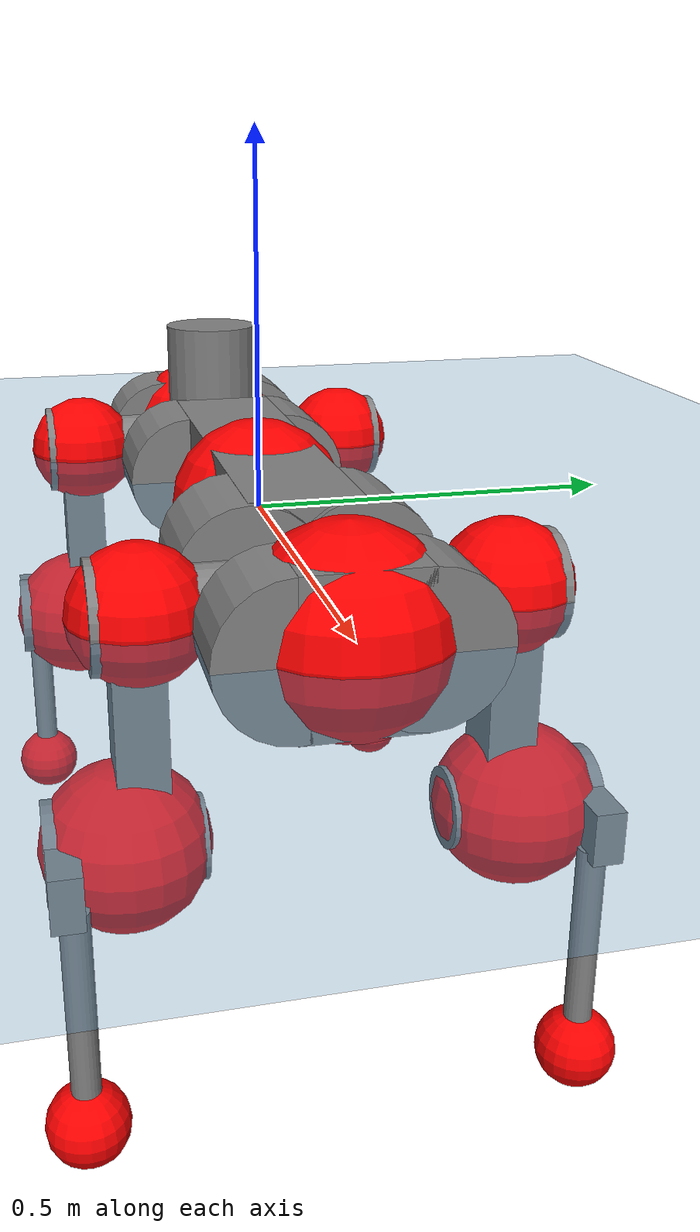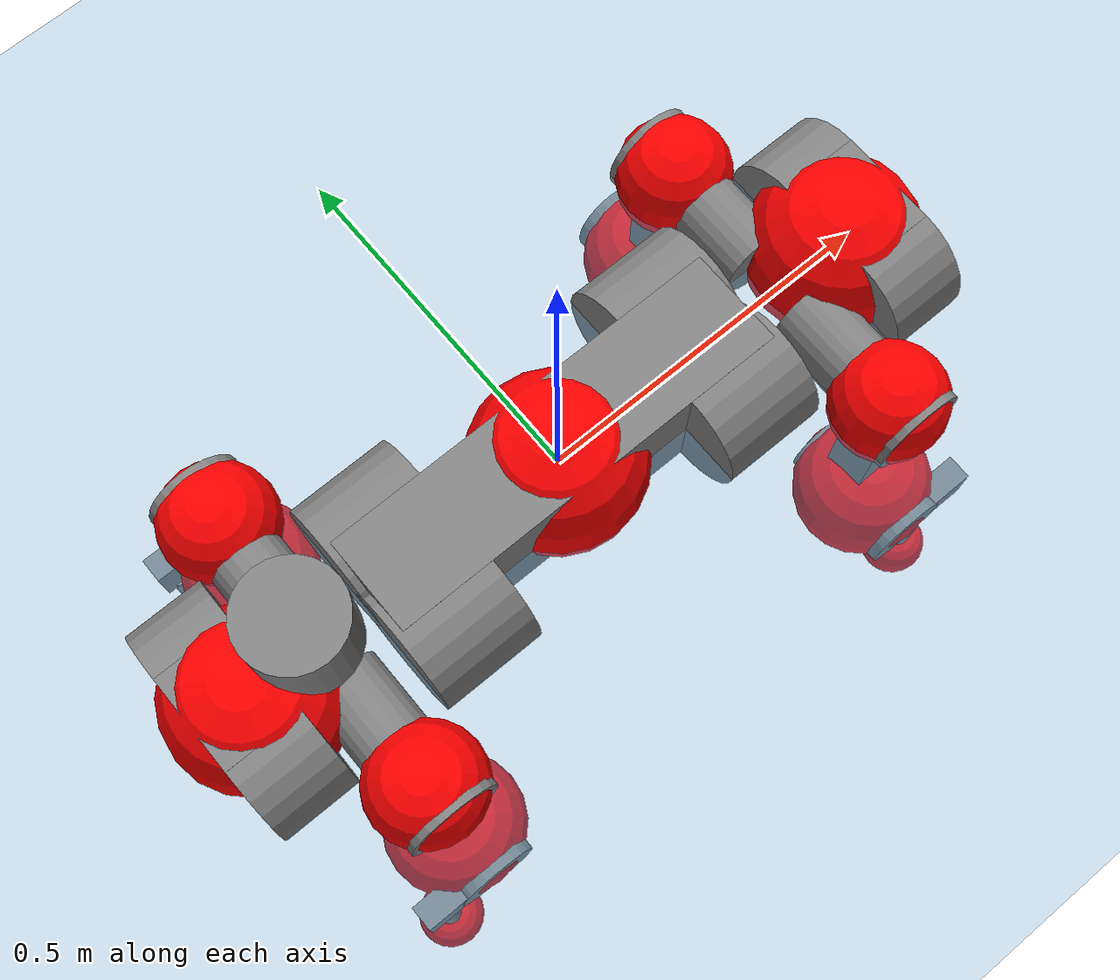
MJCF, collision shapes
<mujoco model="anymal_c">
  <compiler angle="radian" assetdir="assets" balanceinertia="true" inertiafromgeom="false"/>

  <option timestep="0.005" density="1.2" viscosity="2e-05"/>

  <size nkey="1"/>

  <visual>
    <quality shadowsize="8192"/>
    <map shadowclip="0.5"/>
  </visual>

  <default>
    <default class="/">
      <material specular="0" shininess="0.25"/>
      <geom contype="0" conaffinity="0" group="1" solref="-1000 -80"/>
      <site size="0.01 0.005 0.005" group="5"/>
      <general forcelimited="true" forcerange="-80 80" biastype="affine" gainprm="80" biasprm="0 -80 -2"/>
      <default class="anymal_c">
        <joint armature="0.01" damping="0.01" frictionloss="0.1"/>
        <default class="visual">
          <geom type="mesh" group="2"/>
          <default class="visual_zflip"/>
        </default>
        <default class="collision">
          <geom type="cylinder" group="3"/>
          <default class="foot">
            <geom size="0.03 0 0" type="sphere" condim="6" priority="1" friction="0.8 0.02 0.01" solimp="0.015 1 0.03"/>
          </default>
        </default>
      </default>
      <default class="reward_collision_sphere">
        <geom group="5" rgba="1 0 0 1"/>
      </default>
    </default>
  </default>

  <asset>
    <texture type="skybox" colorspace="auto" name="//unnamed_texture_0" builtin="gradient" rgb1="0.95 0.95 0.95" rgb2="0.95 0.95 0.95" width="100" height="600"/>
    <texture type="2d" colorspace="auto" name="texplane" builtin="checker" rgb1="0.345 0.575 0.748" rgb2="0.345 0.575 0.748" markrgb="1 1 1" width="512" height="512"/>
    <texture type="2d" colorspace="linear" name="base" file="base.png"/>
    <texture type="2d" colorspace="linear" name="top_shell" file="top_shell.png"/>
    <texture type="2d" colorspace="linear" name="bottom_shell" file="bottom_shell.png"/>
    <texture type="2d" colorspace="linear" name="remote" file="remote.png"/>
    <texture type="2d" colorspace="linear" name="hatch" file="hatch.png"/>
    <texture type="2d" colorspace="linear" name="handle" file="handle.png"/>
    <texture type="2d" colorspace="linear" name="face" file="face.png"/>
    <texture type="2d" colorspace="linear" name="battery" file="battery.png"/>
    <texture type="2d" colorspace="linear" name="lidar_cage" file="lidar_cage.png"/>
    <texture type="2d" colorspace="linear" name="depth_camera" file="depth_camera.png"/>
    <texture type="2d" colorspace="linear" name="wide_angle_camera" file="wide_angle_camera.png"/>
    <texture type="2d" colorspace="linear" name="lidar" file="lidar.png"/>
    <texture type="2d" colorspace="linear" name="drive" file="drive.png"/>
    <texture type="2d" colorspace="linear" name="hip_l" file="hip_l.png"/>
    <texture type="2d" colorspace="linear" name="shank_l" file="shank_l.png"/>
    <texture type="2d" colorspace="linear" name="foot" file="foot.png"/>
    <texture type="2d" colorspace="linear" name="thigh" file="thigh.png"/>
    <texture type="2d" colorspace="linear" name="shank_r" file="shank_r.png"/>
    <texture type="2d" colorspace="linear" name="hip_r" file="hip_r.png"/>
    <material name="MatPlane" class="/" texture="texplane" texuniform="true" texrepeat="2 2" specular="0.9" shininess="0.5"/>
    <material name="black_plastic" class="/" rgba="0.007 0.007 0.007 1"/>
    <material name="green" class="/" rgba="0.052 0.178 0.033 1"/>
    <material name="red" class="/" rgba="0.178 0.006 0.005 1"/>
    <material name="yellow" class="/" rgba="0.178 0.119 0.006 1"/>
    <material name="lwl" class="/" rgba="0.8 0.8 0.8 1"/>
    <material name="base" class="/" texture="base"/>
    <material name="top_shell" class="/" texture="top_shell"/>
    <material name="bottom_shell" class="/" texture="bottom_shell"/>
    <material name="hip_l" class="/" texture="hip_l"/>
    <material name="thigh" class="/" texture="thigh"/>
    <material name="shank_l" class="/" texture="shank_l"/>
    <material name="foot" class="/" texture="foot"/>
    <material name="hip_r" class="/" texture="hip_r"/>
    <material name="shank" class="/" texture="shank_r"/>
    <material name="hatch" class="/" texture="hatch"/>
    <material name="remote" class="/" texture="remote"/>
    <material name="handle" class="/" texture="handle"/>
    <material name="face" class="/" texture="face"/>
    <material name="depth_camera" class="/" texture="depth_camera"/>
    <material name="wide_angle_camera" class="/" texture="wide_angle_camera"/>
    <material name="battery" class="/" texture="battery"/>
    <material name="lidar_cage" class="/" texture="lidar_cage"/>
    <material name="lidar" class="/" texture="lidar"/>
    <material name="drive" class="/" texture="drive"/>
    <mesh name="base_0" class="/" file="base_0.obj"/>
    <mesh name="base_1" class="/" file="base_1.obj"/>
    <mesh name="base_2" class="/" file="base_2.obj"/>
    <mesh name="base_3" class="/" file="base_3.obj"/>
    <mesh name="base_4" class="/" file="base_4.obj"/>
    <mesh name="base_5" class="/" file="base_5.obj"/>
    <mesh name="top_shell" class="/" file="top_shell.obj"/>
    <mesh name="bottom_shell" class="/" file="bottom_shell.obj"/>
    <mesh name="remote" class="/" file="remote.obj"/>
    <mesh name="handle" class="/" file="handle.obj"/>
    <mesh name="face" class="/" file="face.obj"/>
    <mesh name="wide_angle_camera" class="/" file="wide_angle_camera.obj"/>
    <mesh name="depth_camera" class="/" file="depth_camera.obj"/>
    <mesh name="battery" class="/" file="battery.obj"/>
    <mesh name="lidar_cage" class="/" file="lidar_cage.obj"/>
    <mesh name="lidar" class="/" file="lidar.obj"/>
    <mesh name="drive" class="/" file="drive.obj"/>
    <mesh name="hip_l" class="/" file="hip_l.obj"/>
    <mesh name="thigh" class="/" file="thigh.obj"/>
    <mesh name="shank_l" class="/" file="shank_l.obj"/>
    <mesh name="foot" class="/" file="foot.obj"/>
    <mesh name="hip_r" class="/" file="hip_r.obj"/>
    <mesh name="hatch" class="/" file="hatch.obj"/>
    <mesh name="shank_r" class="/" file="shank_r.obj"/>
  </asset>

  <worldbody>
    <geom name="floor" class="/" size="100 100 0.125" type="plane" group="0" material="MatPlane"/>
    <light name="toplight_shadow" class="/" pos="0 0 5" dir="0.0990148 0.0990148 -0.990148" type="directional" ambient="0.04 0.04 0.04" diffuse="0.55 0.55 0.55" specular="0.12 0.12 0.12"/>
    <light name="toplight_fill" class="/" pos="0 0 5" dir="0.0990148 0.0990148 -0.990148" type="directional" castshadow="false" ambient="0.04 0.04 0.04" diffuse="0.3 0.3 0.3" specular="0.08 0.08 0.08"/>
    <body name="trunk" childclass="anymal_c" pos="-0.00203329 -0.000242768 0.00102365" quat="1 -9.79879e-05 -0.000438046 -0.000236932">
      <inertial pos="0.00020613 -0.000616524 0.0481669" quat="0.501302 0.495744 0.502003 0.500926" mass="19.503" diaginertia="0.848416 0.570576 0.209804"/>
      <joint name="//unnamed_joint_0" type="free" armature="0" damping="0" frictionloss="0"/>
      <geom name="//unnamed_geom_1" class="visual" material="green" mesh="base_0"/>
      <geom name="//unnamed_geom_2" class="visual" material="yellow" mesh="base_1"/>
      <geom name="//unnamed_geom_3" class="visual" material="red" mesh="base_2"/>
      <geom name="//unnamed_geom_4" class="visual" material="black_plastic" mesh="base_3"/>
      <geom name="//unnamed_geom_5" class="visual" material="lwl" mesh="base_4"/>
      <geom name="//unnamed_geom_6" class="visual" material="base" mesh="base_5"/>
      <geom name="trunk_1" class="collision" size="0.292651 0.0706399 0.0908227" type="box"/>
      <geom name="trunk_2" class="collision" size="0.0908227 0.0731627" pos="0.229775 0.0687002 0" quat="0.707107 0 0.707107 0"/>
      <geom name="trunk_3" class="collision" size="0.0908227 0.0731627" pos="-0.229775 0.0687002 0" quat="0.707107 0 0.707107 0"/>
      <geom name="trunk_4" class="collision" size="0.0908227 0.0731627" pos="0.229775 -0.0687002 0" quat="0.707107 0 0.707107 0"/>
      <geom name="trunk_5" class="collision" size="0.0908227 0.0731627" pos="-0.229775 -0.0687002 0" quat="0.707107 0 0.707107 0"/>
      <geom name="//unnamed_geom_12" class="visual" material="top_shell" mesh="top_shell"/>
      <geom name="//unnamed_geom_13" class="visual" material="bottom_shell" mesh="bottom_shell"/>
      <geom name="//unnamed_geom_14" class="visual" material="remote" mesh="remote"/>
      <geom name="//unnamed_geom_15" class="visual" material="handle" mesh="handle"/>
      <geom name="//unnamed_geom_16" class="visual" pos="0.437892 0 0" quat="1 0 0 0" material="face" mesh="face"/>
      <geom name="trunk_6" class="collision" size="0.0555027 0.0706399 0.0908227" pos="0.495996 0 0" type="box"/>
      <geom name="//unnamed_geom_18" class="collision" size="0.0908227 0.0555027" pos="0.495996 0.0687002 0" quat="0.707107 0 0.707107 0"/>
      <geom name="//unnamed_geom_19" class="collision" size="0.0908227 0.0555027" pos="0.495996 -0.0687002 0" quat="0.707107 0 0.707107 0"/>
      <geom name="//unnamed_geom_20" class="visual" pos="0.4877 0 -0.0283868" quat="0.965926 0 0.258819 0" material="depth_camera" mesh="depth_camera"/>
      <geom name="//unnamed_geom_21" class="visual" pos="0.541951 0 0.0148137" material="wide_angle_camera" mesh="wide_angle_camera"/>
      <geom name="//unnamed_geom_22" class="visual_zflip" pos="-0.437892 0 0" quat="0 0 0 1" material="face" mesh="face"/>
      <geom name="trunk_7" class="collision" size="0.0555027 0.0706399 0.0908227" pos="-0.495996 0 0" quat="0 0 0 1" type="box"/>
      <geom name="//unnamed_geom_24" class="collision" size="0.0908227 0.0555027" pos="-0.495996 -0.0687002 0" quat="0 -0.707107 0 0.707107"/>
      <geom name="//unnamed_geom_25" class="collision" size="0.0908227 0.0555027" pos="-0.495996 0.0687002 0" quat="0 -0.707107 0 0.707107"/>
      <geom name="//unnamed_geom_26" class="visual" pos="-0.4877 0 -0.0283868" quat="0 -0.258819 0 0.965926" material="depth_camera" mesh="depth_camera"/>
      <geom name="//unnamed_geom_27" class="visual_zflip" pos="-0.541951 0 0.0148137" quat="0 0 0 1" material="wide_angle_camera" mesh="wide_angle_camera"/>
      <geom name="//unnamed_geom_28" class="visual" material="battery" mesh="battery"/>
      <geom name="//unnamed_geom_29" class="visual" pos="0 0.0740532 0.0292549" quat="0.683013 -0.183013 0.183013 0.683013" material="depth_camera" mesh="depth_camera"/>
      <geom name="//unnamed_geom_30" class="visual" pos="0 -0.0740532 0.0292549" quat="0.683013 0.183013 0.183013 -0.683013" material="depth_camera" mesh="depth_camera"/>
      <geom name="//unnamed_geom_31" class="visual" pos="-0.384542 0 0.0727324" quat="1 0 0 0" material="lidar_cage" mesh="lidar_cage"/>
      <geom name="trunk_8" class="collision" size="0.0706399 0.0605484" pos="-0.384542 0 0.132106"/>
      <geom name="//unnamed_geom_33" class="visual" pos="-0.384542 -2.94668e-05 0.140715" quat="0.707107 0 0 -0.707107" material="lidar" mesh="lidar"/>
      <geom name="//unnamed_geom_34" class="visual" pos="0.316825 0.102072 -1.4017e-10" quat="0.258819 0.965926 0 0" material="drive" mesh="drive"/>
      <geom name="//unnamed_geom_35" class="visual" pos="0.316825 -0.102072 1.4017e-10" quat="0.258819 -0.965926 0 0" material="drive" mesh="drive"/>
      <geom name="//unnamed_geom_36" class="visual" pos="-0.316825 0.102072 1.4017e-10" quat="0 0 0.965926 -0.258819" material="drive" mesh="drive"/>
      <geom name="//unnamed_geom_37" class="visual" pos="-0.316825 -0.102072 -1.4017e-10" quat="0 0 -0.965926 -0.258819" material="drive" mesh="drive"/>
      <geom name="//unnamed_geom_38" class="visual" pos="0.122546 0 0.0722376" quat="1 0 0 0" material="hatch" mesh="hatch"/>
      <geom name="//unnamed_geom_39" class="reward_collision_sphere" size="0.121097"/>
      <geom name="//unnamed_geom_40" class="reward_collision_sphere" size="0.121097" pos="0.475396 0 0"/>
      <geom name="//unnamed_geom_41" class="reward_collision_sphere" size="0.121097" pos="-0.475396 0 0"/>
      <site name="imu" pos="0.261548 0.00323159 0.0488746" size="0.0100914"/>
      <camera name="track" pos="0 -1.96286 0" quat="0.707107 0.707107 0 0" mode="trackcom"/>
      <camera name="ego_camera" pos="0.475396 0 -0.0395823" quat="-0.5 -0.5 0.5 0.5"/>
      <body name="LF_HIP" pos="0.318057 0.102926 -0.00117864" quat="0.258912 0.9659 -0.000994227 7.0143e-05">
        <inertial pos="0.0576853 -0.0139378 -0.00738786" quat="-0.128151 0.709501 -0.134727 0.679731" mass="2.89149" diaginertia="0.00781529 0.00445477 0.00315292"/>
        <joint name="LF_HAA" pos="0 0 0" axis="1 0.000966202 -0.000116453" range="-0.724667 0.460814" armature="0.0104576" damping="0.010127" frictionloss="0.0957669"/>
        <geom name="//unnamed_geom_42" class="visual" pos="0 -8.24555e-06 1.35433e-06" quat="0.258819 -0.965926 0 0" material="hip_l" mesh="hip_l"/>
        <geom name="//unnamed_geom_43" class="visual" pos="0.0632804 -0.0756931 -0.0437615" quat="0.183013 -0.683013 0.683013 0.183013" material="drive" mesh="drive"/>
        <geom name="//unnamed_geom_44" class="collision" size="0.050457 0.0706399" pos="0.0632804 -0.0117377 -0.00683289" quat="-0.353553 -0.612372 0.612372 -0.353553"/>
        <body name="LF_THIGH" pos="0.0633647 -0.0719872 -0.0419538" quat="0.183072 -0.68294 0.683074 0.182997">
          <inertial pos="0.0348188 9.89353e-05 -0.241437" quat="0.993197 -0.0041008 -0.0814864 0.0830891" mass="3.17705" diaginertia="0.0395879 0.0270479 0.00402487"/>
          <joint name="LF_HFE" pos="0 0 0" axis="0.999996 0.00266836 0.000521226" stiffness="0.0126448" range="-3.16669 3.15082" armature="0.0103813" damping="0" frictionloss="0.0966761"/>
          <geom name="//unnamed_geom_45" class="visual" pos="0.00149227 2.35147e-06 0" quat="0.707107 0 0 -0.707107" material="thigh" mesh="thigh"/>
          <geom name="//unnamed_geom_46" class="collision" size="0.0655942 0.0403656" pos="0.0422574 0 0" quat="0.5 0.5 -0.5 -0.5"/>
          <geom name="//unnamed_geom_47" class="collision" size="0.0378428 0.0302742 0.142606" pos="0.031693 0 -0.139838" quat="0.707107 0 0 -0.707107" type="box"/>
          <geom name="//unnamed_geom_48" class="visual" pos="0.10596 0 -0.282024" quat="1 0 0 0" material="drive" mesh="drive"/>
          <geom name="//unnamed_geom_49" class="collision" size="0.050457 0.0706399" pos="0.03201 0 -0.282024" quat="0.707107 0 0.707107 0"/>
          <geom name="//unnamed_geom_50" class="reward_collision_sphere" size="0.0807313" pos="0.0264109 0 0"/>
          <body name="LF_SHANK" pos="0.106158 -0.000142129 -0.282783" quat="1 5.64209e-07 -2.83742e-05 0.000105473">
            <inertial pos="0.00535438 -0.0607935 -0.0804332" quat="0.993606 -0.109213 -0.00263744 -0.028508" mass="0.598881" diaginertia="0.0135067 0.00831703 0.0010608"/>
            <joint name="LF_KFE" pos="0 0 0" axis="0.999985 -0.00356279 0.00411504" range="-3.14961 3.11446" armature="0.010467" damping="0.00916494" frictionloss="0.098549"/>
            <geom name="//unnamed_geom_51" class="visual" pos="0.000486598 0.00259456 0" quat="0.707107 0 0 -0.707107" material="shank_l" mesh="shank_l"/>
            <geom name="LF_kfe_act" class="collision" size="0.0605484 0.0201828" pos="0.0211287 0 0" quat="0.5 0.5 -0.5 -0.5"/>
            <geom name="//unnamed_geom_53" class="collision" size="0.0580246 0.0340585 0.0191737" pos="0.0211287 -0.0564313 0" quat="0.5 0.5 -0.5 -0.5" type="box"/>
            <geom name="//unnamed_geom_54" class="visual" pos="0.0137864 -0.0854807 -0.334441" quat="0.382683 0 0 -0.92388" material="foot" mesh="foot"/>
            <geom name="LF_calf" class="collision" size="0.01766 0.142543" pos="0.0137865 -0.0863169 -0.16722" quat="0.707107 0 0 -0.707107"/>
            <geom name="LF_foot" class="foot" size="0.029602" pos="0.0137865 -0.0863169 -0.312175" quat="0.707107 0 0 -0.707107"/>
            <geom name="//unnamed_geom_57" class="reward_collision_sphere" size="0.100914" pos="-0.0528217 0 0"/>
            <geom name="//unnamed_geom_58" class="reward_collision_sphere" size="0.050457" pos="0.0137865 -0.0863169 -0.312175"/>
            <site name="LF_foot" class="foot" pos="0.0137865 -0.0863169 -0.312175" quat="0.707107 0 0 -0.707107" size="0.0100914"/>
          </body>
        </body>
      </body>
      <body name="RF_HIP" pos="0.317078 -0.101092 0.00118479" quat="0.258888 -0.965907 0.000507621 8.97279e-05">
        <inertial pos="0.0609413 0.0145276 -0.00839525" quat="0.135213 0.679039 0.127844 0.710126" mass="2.95165" diaginertia="0.00769292 0.00450046 0.00313736"/>
        <joint name="RF_HAA" pos="0 0 0" axis="0.999997 -0.00181223 0.00168464" range="-0.504291 0.714831" armature="0.00898632" damping="0.0095854" frictionloss="0.111448"/>
        <geom name="//unnamed_geom_59" class="visual" pos="0 8.24549e-06 1.35432e-06" quat="0.258819 0.965926 0 0" material="hip_r" mesh="hip_r"/>
        <geom name="//unnamed_geom_60" class="visual" pos="0.0632804 0.0756931 -0.0437615" quat="0.183013 0.683013 0.683013 -0.183013" material="drive" mesh="drive"/>
        <geom name="//unnamed_geom_61" class="collision" size="0.050457 0.0706399" pos="0.0632804 0.0117377 -0.00683289" quat="-0.353553 0.612372 0.612372 0.353553"/>
        <body name="RF_THIGH" pos="0.0639897 0.0710059 -0.0406962" quat="0.182609 0.683246 0.68272 -0.183633">
          <inertial pos="0.0322884 -0.00230345 -0.242143" quat="0.992764 -0.00696149 -0.0796061 0.0896335" mass="3.10344" diaginertia="0.0402612 0.0278988 0.00397109"/>
          <joint name="RF_HFE" pos="0 0 0" axis="0.999986 -0.00494542 0.00175554" stiffness="0.00323888" range="-3.1255 3.15788" armature="0.0101911" damping="0.010666" frictionloss="0.0958194"/>
          <geom name="//unnamed_geom_62" class="visual" pos="0.00149227 2.35147e-06 0" quat="0.707107 0 0 -0.707107" material="thigh" mesh="thigh"/>
          <geom name="//unnamed_geom_63" class="collision" size="0.0655942 0.0403656" pos="0.0422574 0 0" quat="0.5 0.5 0.5 0.5"/>
          <geom name="//unnamed_geom_64" class="collision" size="0.0378428 0.0302742 0.142606" pos="0.031693 0 -0.139838" quat="0.707107 0 0 0.707107" type="box"/>
          <geom name="//unnamed_geom_65" class="visual" pos="0.10596 0 -0.282024" quat="1 0 0 0" material="drive" mesh="drive"/>
          <geom name="//unnamed_geom_66" class="collision" size="0.050457 0.0706399" pos="0.03201 0 -0.282024" quat="0.707107 0 0.707107 0"/>
          <geom name="//unnamed_geom_67" class="reward_collision_sphere" size="0.0807313" pos="0.0264109 0 0"/>
          <body name="RF_SHANK" pos="0.105292 -0.000162413 -0.281368" quat="1 -8.0505e-05 -0.000161981 -1.0625e-05">
            <inertial pos="0.00527564 0.0602517 -0.0790504" quat="0.992736 0.117241 -0.00212454 0.0269207" mass="0.608711" diaginertia="0.0137825 0.00848635 0.00107689"/>
            <joint name="RF_KFE" pos="0 0 0" axis="0.999956 0.00462767 0.0081442" range="-3.14519 3.12622" armature="0.0102616" damping="0.00537346" frictionloss="0.0985625"/>
            <geom name="//unnamed_geom_68" class="visual" pos="0.000486595 -0.00259456 0" quat="0.707107 0 0 0.707107" material="shank" mesh="shank_r"/>
            <geom name="RF_kfe_act" class="collision" size="0.0605484 0.0201828" pos="0.0211287 0 0" quat="0.5 0.5 0.5 0.5"/>
            <geom name="//unnamed_geom_70" class="collision" size="0.0580246 0.0340585 0.0191737" pos="0.0211287 0.0564313 0" quat="0.5 0.5 0.5 0.5" type="box"/>
            <geom name="//unnamed_geom_71" class="visual" pos="0.0137866 0.0854807 -0.334441" quat="0.382683 0 0 0.92388" material="foot" mesh="foot"/>
            <geom name="RF_calf" class="collision" size="0.01766 0.142543" pos="0.0137865 0.0863169 -0.16722" quat="0.707107 0 0 0.707107"/>
            <geom name="RF_foot" class="foot" size="0.0301504" pos="0.0137865 0.0863169 -0.312175" quat="0.707107 0 0 0.707107"/>
            <geom name="//unnamed_geom_74" class="reward_collision_sphere" size="0.100914" pos="-0.0528217 0 0"/>
            <geom name="//unnamed_geom_75" class="reward_collision_sphere" size="0.050457" pos="0.0137865 0.0863169 -0.312175"/>
            <site name="RF_foot" class="foot" pos="0.0137865 0.0863169 -0.312175" quat="0.707107 0 0 0.707107" size="0.0100914"/>
          </body>
        </body>
      </body>
      <body name="LH_HIP" pos="-0.316694 0.1015 0.000275437" quat="0.000417903 0.000636071 0.965671 -0.259766">
        <inertial pos="0.0620732 0.0150691 -0.00775256" quat="0.13538 0.679147 0.127949 0.709972" mass="2.85155" diaginertia="0.00770866 0.00451067 0.00314488"/>
        <joint name="LH_HAA" pos="0 0 0" axis="1 0.000280244 -6.10318e-05" range="-0.494246 0.731232" armature="0.0100721" damping="0.00882639" frictionloss="0.0958259"/>
        <geom name="//unnamed_geom_76" class="visual" pos="0 8.24549e-06 1.35432e-06" quat="-0.258819 -0.965926 0 0" material="hip_r" mesh="hip_r"/>
        <geom name="//unnamed_geom_77" class="visual" pos="0.0632804 0.0756931 -0.0437615" quat="0.183013 0.683013 0.683013 -0.183013" material="drive" mesh="drive"/>
        <geom name="//unnamed_geom_78" class="collision" size="0.050457 0.0706399" pos="0.0632804 0.0117377 -0.00683289" quat="-0.353553 0.612372 0.612372 0.353553"/>
        <body name="LH_THIGH" pos="0.0605949 0.0702117 -0.0414018" quat="0.183386 0.682713 0.68307 -0.183542">
          <inertial pos="0.0329277 -0.00025086 -0.243186" quat="0.992372 -0.00318235 -0.087483 0.0868055" mass="3.10449" diaginertia="0.0394242 0.026913 0.00392131"/>
          <joint name="LH_HFE" pos="0 0 0" axis="0.999995 0.00238526 0.00182437" range="-3.14902 3.14604" armature="0.0100712" damping="0" frictionloss="0.105816"/>
          <geom name="//unnamed_geom_79" class="visual" pos="0.00149227 2.35147e-06 0" quat="0.707107 0 0 -0.707107" material="thigh" mesh="thigh"/>
          <geom name="//unnamed_geom_80" class="collision" size="0.0655942 0.0403656" pos="0.0422574 0 0" quat="0.5 0.5 -0.5 -0.5"/>
          <geom name="//unnamed_geom_81" class="collision" size="0.0378428 0.0302742 0.142606" pos="0.031693 0 -0.139838" quat="0.707107 0 0 -0.707107" type="box"/>
          <geom name="//unnamed_geom_82" class="visual" pos="0.10596 0 -0.282024" quat="1 0 0 0" material="drive" mesh="drive"/>
          <geom name="//unnamed_geom_83" class="collision" size="0.050457 0.0706399" pos="0.03201 0 -0.282024" quat="0.707107 0 0.707107 0"/>
          <geom name="//unnamed_geom_84" class="reward_collision_sphere" size="0.0807313" pos="0.0264109 0 0"/>
          <body name="LH_SHANK" pos="0.104693 -0.000276444 -0.282878" quat="1 -7.30317e-05 9.54282e-05 -4.26733e-05">
            <inertial pos="0.00581736 0.0601273 -0.08034" quat="0.992924 0.115973 -0.00116814 0.0254985" mass="0.607127" diaginertia="0.0133406 0.00839607 0.00105938"/>
            <joint name="LH_KFE" pos="0 0 0" axis="0.999984 0.0017999 -0.005354" range="-3.1307 3.13931" armature="0.0104953" damping="0" frictionloss="0.102388"/>
            <geom name="//unnamed_geom_85" class="visual" pos="0.000486595 -0.00259456 0" quat="-0.707107 0 0 -0.707107" material="shank" mesh="shank_r"/>
            <geom name="LH_kfe_act" class="collision" size="0.0605484 0.0201828" pos="0.0211287 0 0" quat="0.5 0.5 -0.5 -0.5"/>
            <geom name="//unnamed_geom_87" class="collision" size="0.0580246 0.0340585 0.0191737" pos="0.0211287 0.0564313 0" quat="0.5 0.5 -0.5 -0.5" type="box"/>
            <geom name="//unnamed_geom_88" class="visual" pos="0.0137866 0.0854807 -0.334441" quat="-0.382683 0 0 -0.92388" material="foot" mesh="foot"/>
            <geom name="LH_calf" class="collision" size="0.01766 0.142543" pos="0.0137865 0.0863169 -0.16722" quat="0.707107 0 0 -0.707107"/>
            <geom name="LH_foot" class="foot" size="0.0315636" pos="0.0137865 0.0863169 -0.312175" quat="0.707107 0 0 -0.707107"/>
            <geom name="//unnamed_geom_91" class="reward_collision_sphere" size="0.100914" pos="-0.0528217 0 0"/>
            <geom name="//unnamed_geom_92" class="reward_collision_sphere" size="0.050457" pos="0.0137865 0.0863169 -0.312175"/>
            <site name="LH_foot" class="foot" pos="0.0137865 0.0863169 -0.312175" quat="0.707107 0 0 -0.707107" size="0.0100914"/>
          </body>
        </body>
      </body>
      <body name="RH_HIP" pos="-0.317222 -0.104207 0.0012622" quat="-0.000101116 -5.53419e-05 -0.965908 -0.258884">
        <inertial pos="0.0599366 -0.0142606 -0.00847769" quat="-0.13379 0.713067 -0.137038 0.67443" mass="2.87378" diaginertia="0.00769177 0.004486 0.00317556"/>
        <joint name="RH_HAA" pos="0 0 0" axis="1 0.000486617 0.000440244" stiffness="0.00130729" range="-0.716708 0.487133" armature="0.0111557" damping="0.022079" frictionloss="0.093773"/>
        <geom name="//unnamed_geom_93" class="visual" pos="0 -8.24555e-06 1.35433e-06" quat="-0.258819 0.965926 0 0" material="hip_l" mesh="hip_l"/>
        <geom name="//unnamed_geom_94" class="visual" pos="0.0632804 -0.0756931 -0.0437615" quat="-0.183013 0.683013 -0.683013 -0.183013" material="drive" mesh="drive"/>
        <geom name="//unnamed_geom_95" class="collision" size="0.050457 0.0706399" pos="0.0632804 -0.0117377 -0.00683289" quat="0.353553 0.612372 -0.612372 0.353553"/>
        <body name="RH_THIGH" pos="0.0638237 -0.0714667 -0.0429118" quat="-0.183511 0.682972 -0.682894 -0.183112">
          <inertial pos="0.032937 0.000731373 -0.242666" quat="0.993231 -0.00571634 -0.0803257 0.0837097" mass="3.2309" diaginertia="0.0408199 0.0275399 0.00393549"/>
          <joint name="RH_HFE" pos="0 0 0" axis="0.999991 0.00410207 -0.000988688" range="-3.17457 3.14023" armature="0.00974007" damping="0.0088549" frictionloss="0.103756"/>
          <geom name="//unnamed_geom_96" class="visual" pos="0.00149227 2.35147e-06 0" quat="0.707107 0 0 -0.707107" material="thigh" mesh="thigh"/>
          <geom name="//unnamed_geom_97" class="collision" size="0.0655942 0.0403656" pos="0.0422574 0 0" quat="0.5 0.5 0.5 0.5"/>
          <geom name="//unnamed_geom_98" class="collision" size="0.0378428 0.0302742 0.142606" pos="0.031693 0 -0.139838" quat="0.707107 0 0 0.707107" type="box"/>
          <geom name="//unnamed_geom_99" class="visual" pos="0.10596 0 -0.282024" quat="1 0 0 0" material="drive" mesh="drive"/>
          <geom name="//unnamed_geom_100" class="collision" size="0.050457 0.0706399" pos="0.03201 0 -0.282024" quat="0.707107 0 0.707107 0"/>
          <geom name="//unnamed_geom_101" class="reward_collision_sphere" size="0.0807313" pos="0.0264109 0 0"/>
          <body name="RH_SHANK" pos="0.103208 0.000798405 -0.282032" quat="1 -6.35791e-05 -1.5024e-06 9.33276e-06">
            <inertial pos="0.00819271 -0.0600607 -0.0804723" quat="0.992882 -0.116681 0.00366384 -0.0236211" mass="0.605144" diaginertia="0.0129143 0.00814462 0.00103399"/>
            <joint name="RH_KFE" pos="0 0 0" axis="0.999999 0.00110921 0.000257114" stiffness="0.000649455" range="-3.11081 3.18257" armature="0.00965328" damping="0.00955447" frictionloss="0.0976794"/>
            <geom name="//unnamed_geom_102" class="visual" pos="0.000486598 0.00259456 0" quat="0.707107 0 0 -0.707107" material="shank_l" mesh="shank_l"/>
            <geom name="RH_kfe_act" class="collision" size="0.0605484 0.0201828" pos="0.0211287 0 0" quat="0.5 0.5 0.5 0.5"/>
            <geom name="//unnamed_geom_104" class="collision" size="0.0580246 0.0340585 0.0191737" pos="0.0211287 -0.0564313 0" quat="0.5 0.5 0.5 0.5" type="box"/>
            <geom name="//unnamed_geom_105" class="visual" pos="0.0137864 -0.0854807 -0.334441" quat="0.382683 0 0 -0.92388" material="foot" mesh="foot"/>
            <geom name="RH_calf" class="collision" size="0.01766 0.142543" pos="0.0137865 -0.0863169 -0.16722" quat="0.707107 0 0 0.707107"/>
            <geom name="RH_foot" class="foot" size="0.0296168" pos="0.0137865 -0.0863169 -0.312175" quat="0.707107 0 0 0.707107"/>
            <geom name="//unnamed_geom_108" class="reward_collision_sphere" size="0.100914" pos="-0.0528217 0 0"/>
            <geom name="//unnamed_geom_109" class="reward_collision_sphere" size="0.050457" pos="0.0137865 -0.0863169 -0.312175"/>
            <site name="RH_foot" class="foot" pos="0.0137865 -0.0863169 -0.312175" quat="0.707107 0 0 0.707107" size="0.0100914"/>
          </body>
        </body>
      </body>
    </body>
  </worldbody>

  <contact>
    <pair class="/" geom1="floor" geom2="LF_foot" name="//unnamed_contact_0"/>
    <pair class="/" geom1="floor" geom2="RF_foot" name="//unnamed_contact_1"/>
    <pair class="/" geom1="floor" geom2="LH_foot" name="//unnamed_contact_2"/>
    <pair class="/" geom1="floor" geom2="RH_foot" name="//unnamed_contact_3"/>
  </contact>

  <actuator>
    <general name="LF_HAA" class="/" joint="LF_HAA" forcerange="-82.0251 82.0251" gainprm="81.2343" biasprm="0 -81.2343 -1.89832"/>
    <general name="LF_HFE" class="/" joint="LF_HFE" forcerange="-83.3145 83.3145" gainprm="81.2343" biasprm="0 -81.2343 -1.89832"/>
    <general name="LF_KFE" class="/" joint="LF_KFE" forcerange="-80.8245 80.8245" gainprm="81.2343" biasprm="0 -81.2343 -1.89832"/>
    <general name="RF_HAA" class="/" joint="RF_HAA" forcerange="-88.4661 88.4661" gainprm="81.2343" biasprm="0 -81.2343 -1.89832"/>
    <general name="RF_HFE" class="/" joint="RF_HFE" forcerange="-82.7323 82.7323" gainprm="81.2343" biasprm="0 -81.2343 -1.89832"/>
    <general name="RF_KFE" class="/" joint="RF_KFE" forcerange="-79.4192 79.4192" gainprm="81.2343" biasprm="0 -81.2343 -1.89832"/>
    <general name="LH_HAA" class="/" joint="LH_HAA" forcerange="-80.2104 80.2104" gainprm="81.2343" biasprm="0 -81.2343 -1.89832"/>
    <general name="LH_HFE" class="/" joint="LH_HFE" forcerange="-79.8683 79.8683" gainprm="81.2343" biasprm="0 -81.2343 -1.89832"/>
    <general name="LH_KFE" class="/" joint="LH_KFE" forcerange="-83.1235 83.1235" gainprm="81.2343" biasprm="0 -81.2343 -1.89832"/>
    <general name="RH_HAA" class="/" joint="RH_HAA" forcerange="-82.3742 82.3742" gainprm="81.2343" biasprm="0 -81.2343 -1.89832"/>
    <general name="RH_HFE" class="/" joint="RH_HFE" forcerange="-83.1531 83.1531" gainprm="81.2343" biasprm="0 -81.2343 -1.89832"/>
    <general name="RH_KFE" class="/" joint="RH_KFE" forcerange="-86.2155 86.2155" gainprm="81.2343" biasprm="0 -81.2343 -1.89832"/>
  </actuator>

  <sensor>
    <gyro site="imu" name="imu_angular_velocity"/>
    <velocimeter site="imu" name="imu_linear_velocity"/>
    <framelinvel objtype="site" objname="LF_foot" name="LF_foot_global_linear_velocity"/>
    <framelinvel objtype="site" objname="RF_foot" name="RF_foot_global_linear_velocity"/>
    <framelinvel objtype="site" objname="LH_foot" name="LH_foot_global_linear_velocity"/>
    <framelinvel objtype="site" objname="RH_foot" name="RH_foot_global_linear_velocity"/>
  </sensor>

  <keyframe>
    <key name="home" qpos="0 0 0.55 1 0 0 0 0 0.4 -0.8 0 -0.4 0.8 0 -0.4 0.8 0 0.4 -0.8"/>
  </keyframe>
</mujoco>
